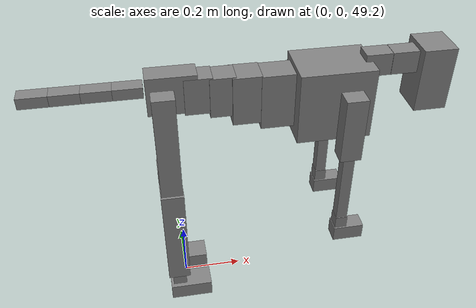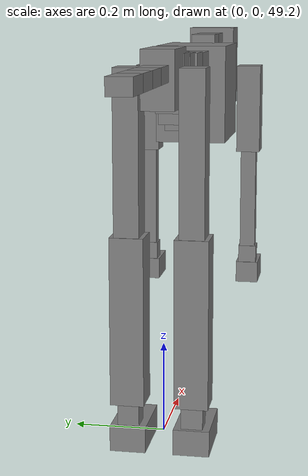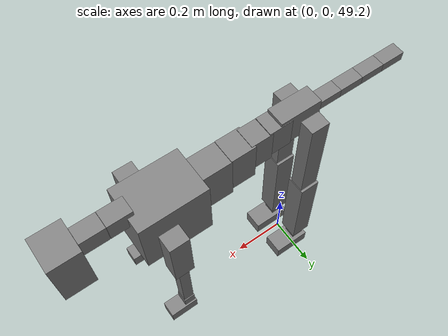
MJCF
<mujoco model="dog">

    <default>
        <joint armature="0.02" stiffness="1" damping="0.2" limited="true"/>
        <geom condim="3" friction="1 0.05 0.05" margin="0.01"/>
        <motor ctrllimited="true" ctrlrange="-1.0 1.0" forcelimited="true" gear="50"/>
    </default>

    <compiler inertiafromgeom="true" angle="radian"/>

    <option timestep="0.016" iterations="50" tolerance="1e-10" solver="Newton" jacobian="dense" cone="pyramidal"/>

    <size nconmax="20000" njmax="60000" nstack="5000000"/>
    <visual>
        <map force="0.1" zfar="30"/>
        <rgba haze="0.15 0.25 0.35 1"/>
        <quality shadowsize="2048"/>
        <global offwidth="800" offheight="800"/>
    </visual>

    <asset>
        <texture type="skybox" builtin="gradient" rgb1="0.3 0.5 0.7" rgb2="0 0 0" width="512" height="512"/>
        <texture name="texplane" type="2d" builtin="checker" rgb1=".2 .3 .4" rgb2=".1 0.15 0.2" width="512" height="512"
                 mark="cross" markrgb=".8 .8 .8"/>
        <texture name="texgeom" type="cube" builtin="flat" mark="cross" width="127" height="1278" rgb1="0.8 0.6 0.4"
                 rgb2="0.8 0.6 0.4" markrgb="1 1 1" random="0.01"/>

        <material name="matplane" reflectance="0.3" texture="texplane" texrepeat="1 1" texuniform="true"/>
        <material name="matgeom" texture="texgeom" texuniform="true" rgba="0.8 0.6 .4 1"/>
    </asset>

    <worldbody>
        <geom name="floor" pos="0 0 0" size="0 0 .25" type="plane" material="matplane" condim="3"/>

        <light directional="false" diffuse=".2 .2 .2" specular="0 0 0" pos="0 0 5" dir="0 0 -1" castshadow="false"/>
        <light mode="targetbodycom" target="torso" directional="false" diffuse=".8 .8 .8" specular="0.3 0.3 0.3"
               pos="0 0 4.0" dir="0 0 -1"/>

        <body name="root" pos="0 0 50">
            <freejoint name="root_1"/>
            <geom type="box" pos="0 0 -0.02" size="0.0774  0.0358  0.063" density="2030"/>

            <body name="spine1" pos="0.054 0 0">
                <joint name="spine1_y" axis="0 1 0" range="0 0.7" limited="true"/>
                <geom type="box" pos="0.02375 0 -0.03" size="0.04375  0.0375  0.05985" density="2030"/>

                <body name="spine2" pos="0.0612 0 0">
                    <joint name="spine2_y" axis="0 1 0" range="-0.15 0.15" limited="true"/>
                    <geom type="box" pos="0.03555  0  -0.04" size="0.04055  0.039  0.06615" density="2030"/>

                    <body name="spine3" pos="0.0730 0 0">
                        <joint name="spine3_y" axis="0 1 0" range="-0.15 0.15" limited="true"/>
                        <geom type="box" pos="0.03555  0  -0.057" size="0.04555  0.0445  0.081" density="2030"/>

                        <body name="spine4" pos="0.0780 0 0">
                            <joint name="spine4_y" axis="0 1 0" range="-0.15 0.15" limited="true"/>
                            <geom type="box" pos="0.05265  0  -0.07" size="0.05265  0.045  0.09135" density="2030"/>

                            <body name="torso" pos="0.1082 0 0">
                                <joint name="torso_y" axis="0 1 0" range="-0.15 0.15" limited="true"/>
                                <geom type="box" pos="0.11925  0  -0.085" size="0.11925  0.085  0.11745"
                                      density="2030"/>

                                <body name="neck1" pos="0.2160  0   0.0180">
                                    <joint name="neck1_y" axis="0 1 0" range="-1.2  -1" limited="true"/>
                                    <geom type="box" pos="0.0423  0  0" size="0.0423  0.03  0.036" density="2325"/>

                                    <body name="neck2" pos="0.0853  0  0">
                                        <joint name="neck2_y" axis="0 1 0" range="0.1  0" limited="true"/>
                                        <geom type="box" pos="0.0423  0  0" size="0.0423  0.03  0.036" density="2325"/>

                                        <body name="head" pos="0.0853  0  0">
                                            <joint name="head_y" axis="0 1 0" range="-0.3  -0.2" limited="true"/>
                                            <geom type="box" pos="0.0531  0  -0.055" size="0.0531  0.06  0.1044"
                                                  density="4030"/>

                                        </body>
                                    </body>
                                </body>

                                <body name="front_shoulder" pos="0.156  0   -0.0480">
                                    <joint name="front_shoulder_y" axis="0 1 0" range="-1 1.5" limited="true"/>
                                    <geom type="box" pos="0 0.13 -0.0819" size="0.0342  0.0292  0.1086" density="1158"/>
                                    <geom type="box" pos="0 -0.13 -0.0819" size="0.0342  0.0292  0.1086"
                                          density="1158"/>

                                    <body name="front_elbow" pos="0  0  -0.1639">
                                        <joint name="front_elbow_y" axis="0 1 0" range="-2 0" limited="true"/>
                                        <geom type="box" pos="0 0.13 -0.1442" size="0.0186  0.0190  0.1442"
                                              density="1081"/>
                                        <geom type="box" pos="0 -0.13 -0.1442" size="0.0186  0.0190  0.1442"
                                              density="1081"/>

                                        <body name="front_wrist" pos="0  0  -0.2884">
                                            <joint name="front_wrist_y" axis="0 1 0" range="-0.2 0" limited="true"/>
                                            <geom type="box" pos="0 0.13 -0.0222" size="0.0200  0.0223  0.0354"
                                                  density="1664"/>
                                            <geom type="box" pos="0 -0.13 -0.0222" size="0.0200  0.0223  0.0354"
                                                  density="1664"/>

                                            <body name="front_finger_end" pos="0  0  -0.0445">
                                                <joint name="front_finger_y" axis="0 1 0" range="-0.4 1"
                                                       limited="true"/>
                                                <geom type="box" pos="0.0279  0.13  -0.0115"
                                                      size="0.0511  0.0279  0.0265" density="1515"/>
                                                <geom type="box" pos="0.0279  -0.13  -0.0115"
                                                      size="0.0511  0.0279  0.0265" density="1515"/>

                                            </body>

                                        </body>
                                    </body>
                                </body>

                            </body>
                        </body>
                    </body>
                </body>
            </body>

            <body name="back_hip" pos="-0.03 0 -0.018">
                <joint name="back_hip_y" axis="0 1 0" range="-1.5 0.3" limited="true"/>
                <geom type="box" pos="0 0.07 -0.1753" size="0.0349  0.0274  0.1981" density="1154"/>
                <geom type="box" pos="0 -0.07 -0.1753" size="0.0349  0.0274  0.1981" density="1154"/>

                <body name="back_knee" pos="0  0  -0.3505">
                    <joint name="back_knee_y" axis="0 1 0" range="0 2.8" limited="true"/>
                    <geom type="box" pos="0 0.07 -0.1701" size="0.0375  0.0369  0.1857" density="1227"/>
                    <geom type="box" pos="0 -0.07 -0.1701" size="0.0375  0.0369  0.1857" density="1227"/>

                    <body name="back_ankle" pos="0  0  -0.3403">
                        <joint name="back_ankle_y" axis="0 1 0" range="-2.2 0" limited="true"/>
                        <geom type="box" pos="0 0.07 -0.0402" size="0.0237  0.0237  0.0515" density="1284"/>
                        <geom type="box" pos="0 -0.07 -0.0402" size="0.0237  0.0237  0.0515" density="1284"/>

                        <body name="back_toe_end" pos="0  0  -0.0804">
                            <joint name="back_toe_y" axis="0 1 0" range="-0.4 1" limited="true"/>
                            <geom type="box" pos="0.0395  0.07  -0.0136" size="0.0724  0.0395  0.0286" density="1515"/>
                            <geom type="box" pos="0.0395  -0.07  -0.0136" size="0.0724  0.0395  0.0286" density="1515"/>

                        </body>
                    </body>
                </body>
            </body>

            <body name="tail1" pos="-0.074 0 -0.006">
                <joint name="tail1_y" axis="0 1 0" range="-0.2 0.2" limited="true"/>
                <geom type="box" pos="-0.0536  0  0" size="0.045  0.025  0.0175" density="1587"/>

                <body name="tail2" pos="-0.09 0 0">
                    <joint name="tail2_y" axis="0 1 0" range="-0.2 0.2" limited="true"/>
                    <geom type="box" pos="-0.0536  0  0" size="0.045  0.025  0.0175" density="1587"/>

                    <body name="tail3" pos="-0.09 0 0">
                        <joint name="tail3_y" axis="0 1 0" range="-0.2 0.2" limited="true"/>
                        <geom type="box" pos="-0.0536  0  0" size="0.045  0.025  0.0175" density="1587"/>

                        <body name="tail4" pos="-0.09 0 0">
                            <joint name="tail4_y" axis="0 1 0" range="-0.2 0.2" limited="true"/>
                            <geom type="box" pos="-0.0536  0  0" size="0.045  0.025  0.0175" density="1587"/>

                        </body>
                    </body>
                </body>
            </body>
        </body>
    </worldbody>

    <actuator>
        <motor joint="spine1_y" forcerange="-150 150     "/>
        <motor joint="spine2_y" forcerange="-150 150     "/>
        <motor joint="spine3_y" forcerange="-150 150     "/>
        <motor joint="spine4_y" forcerange="-150 150     "/>
        <motor joint="torso_y" forcerange="-150 150     "/>
        <motor joint="neck1_y" forcerange="-100 100       "/>
        <motor joint="neck2_y" forcerange="-100 100       "/>
        <motor joint="head_y" forcerange="-150 150       "/>
        <motor joint="front_shoulder_y" forcerange="-134.19 160.51"/>
        <motor joint="front_elbow_y" forcerange="-102.43 135.66"/>
        <motor joint="front_wrist_y" forcerange="-115.86 62.21"/>
        <motor joint="front_finger_y" forcerange="-72.93 35.63"/>
        <motor joint="back_hip_y" forcerange="-260.76 304.10"/>
        <motor joint="back_knee_y" forcerange="-352.80 384.24"/>
        <motor joint="back_angle_y" forcerange="-224.68 54.59"/>
        <motor joint="back_toe_y" forcerange="-113.38 122.44"/>
        <motor joint="tail1_y" forcerange="-50 50     "/>
        <motor joint="tail2_y" forcerange="-50 50     "/>
        <motor joint="tail3_y" forcerange="-50 50     "/>
        <motor joint="tail4_y" forcerange="-50 50     "/>
    </actuator>
</mujoco>
